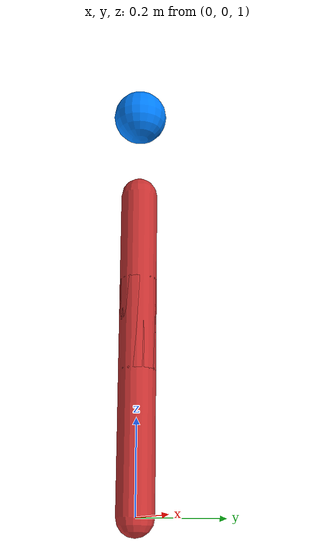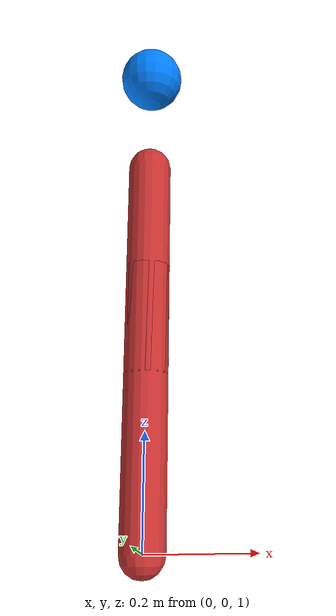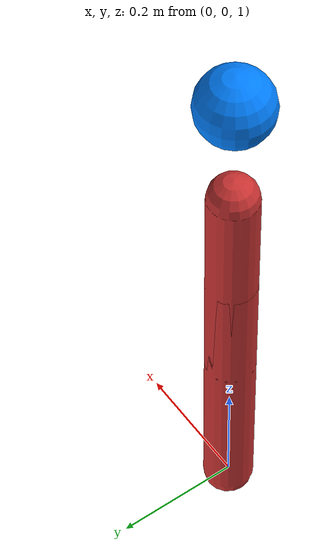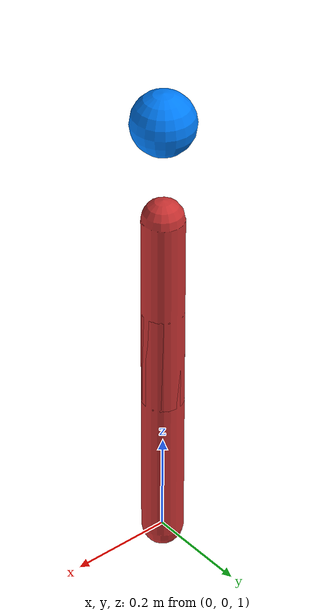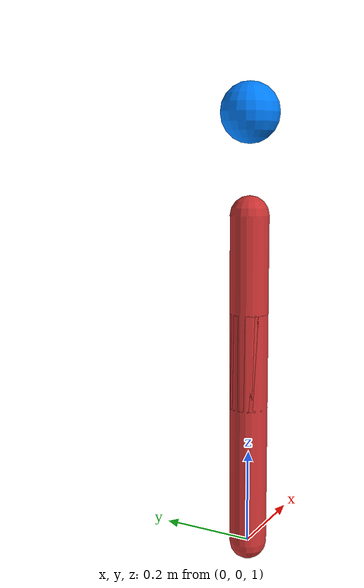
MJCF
<mujoco model="two_link_arm">
  <compiler angle="degree" meshdir="meshes"/>

  <default>
    <default class="arm">
      <geom rgba="0.8 0.2 0.2 1" type="capsule"/>
      <joint damping="1" type="hinge"/>
    </default>
  </default>

  <worldbody>
    <body name="upper_arm" pos="0 0 1">
      <joint name="shoulder" class="arm" axis="0 1 0" range="-90 90"/>
      <geom name="upper_geom" class="arm" fromto="0 0 0 0 0 0.5" size="0.04"/>
      <body name="lower_arm" pos="0 0 0.5">
        <joint name="elbow" class="arm" axis="0 1 0" range="-120 0"/>
        <geom name="lower_geom" class="arm" size="0.04 0.2"/>
        <geom name="hand" type="sphere" size="0.06" pos="0 0 0.4" rgba="0 0.5 1 1"/>
      </body>
    </body>
  </worldbody>
</mujoco>
